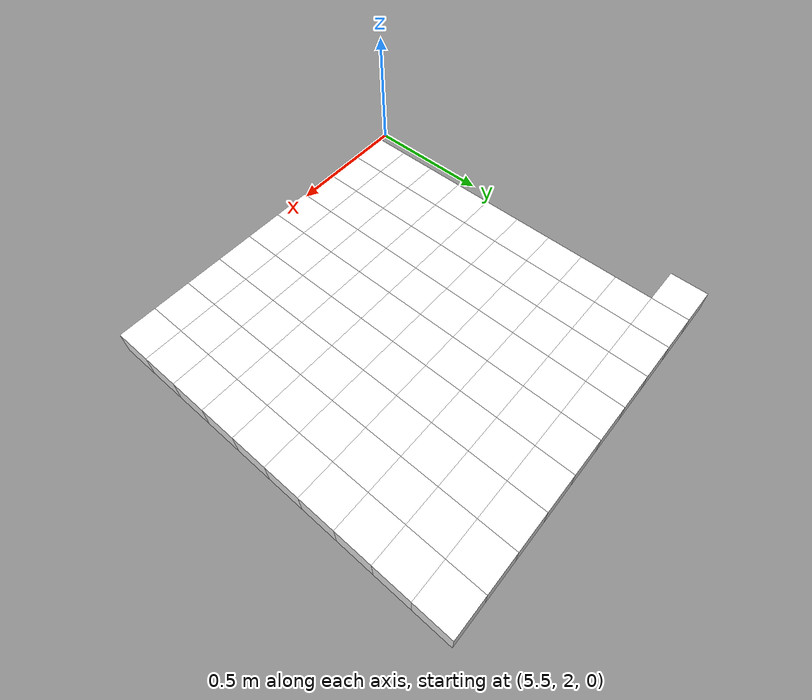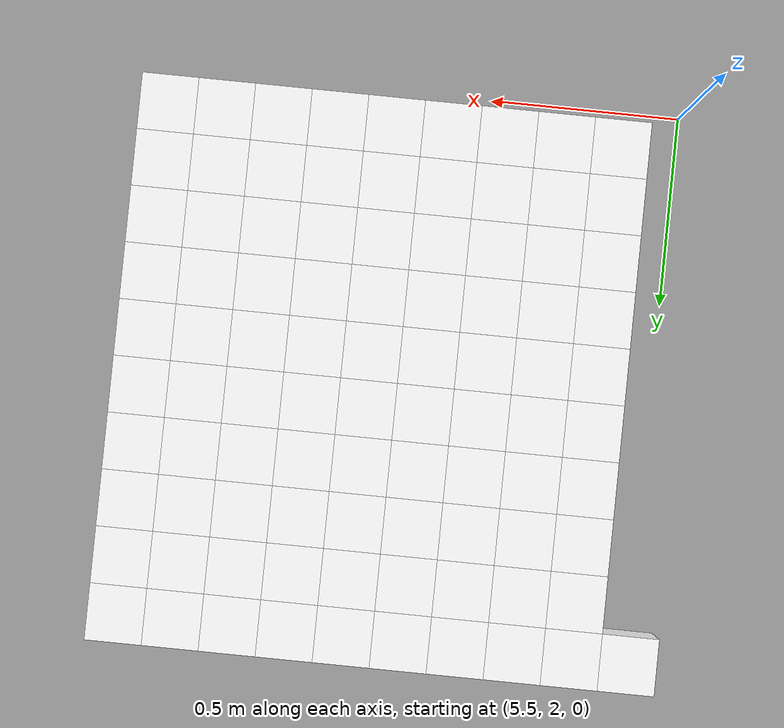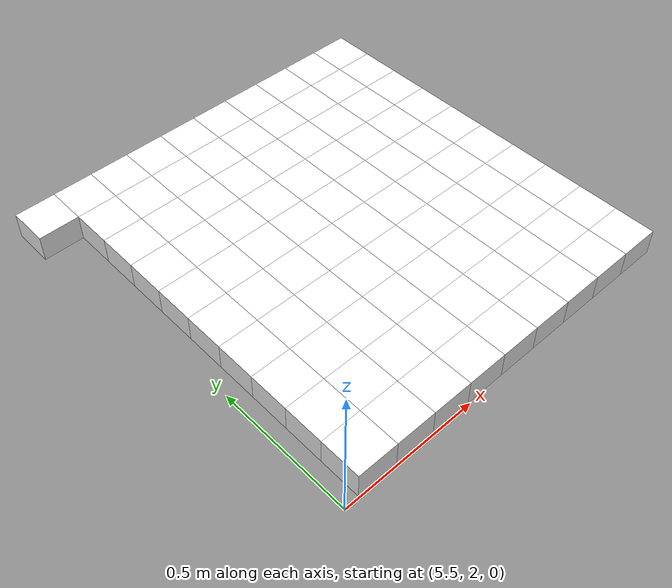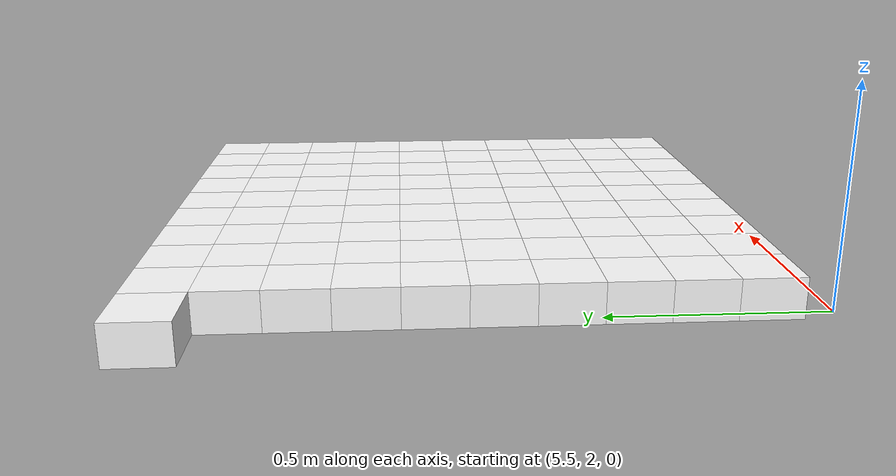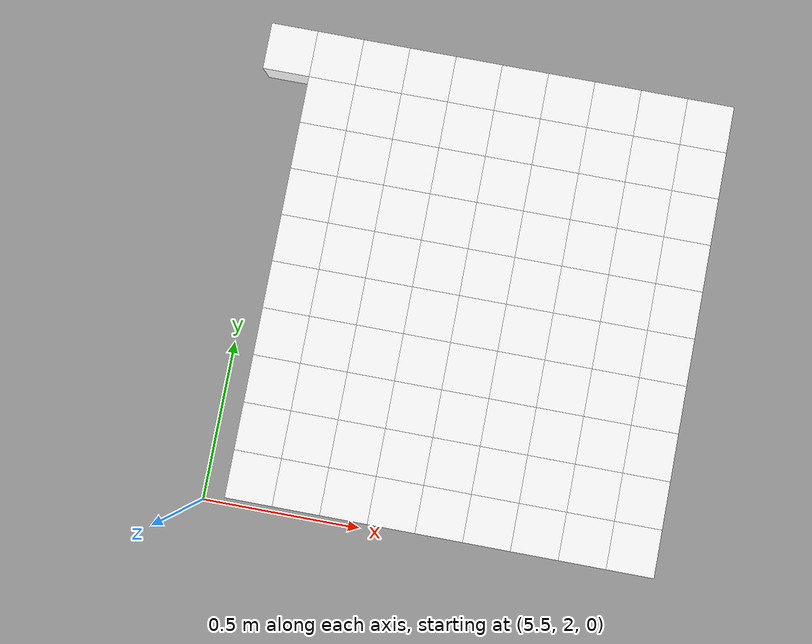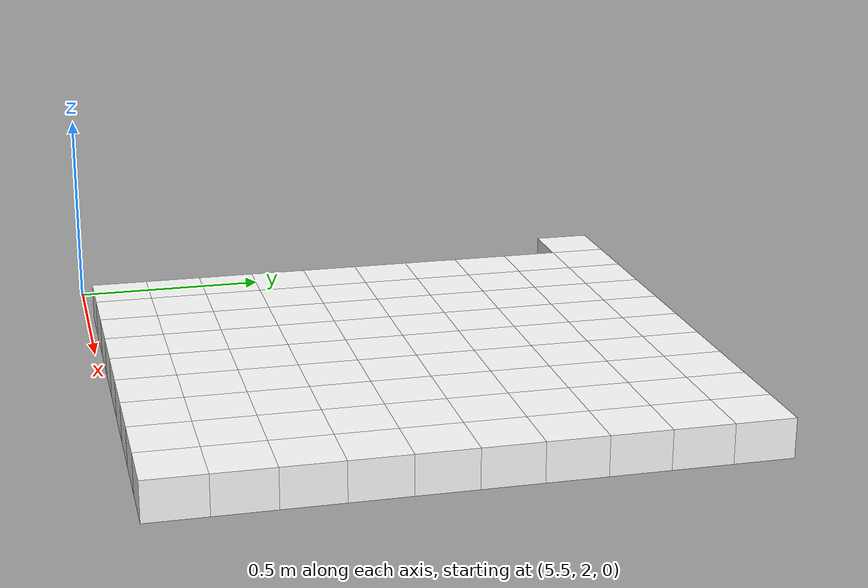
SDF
<sdf version="1.7">
 <world name="default">
  <include><uri>model://sun</uri></include>
  <model name="static_environment">
   <static>true</static>
   <link name="region_1011">
    <pose>5.650000000000004 2.0999999999999996 0.0 0.0 0.0 0.0</pose>
    <collision name="region_1011_collision">
     <geometry><box><size>0.15 0.15 0.1</size></box></geometry>
     <surface><friction><ode><mu>1.0</mu><mu2>1.0</mu2></ode></friction></surface>
    </collision>
    <visual name="region_1011_visual">
     <geometry><box><size>0.15 0.15 0.1</size></box></geometry>
     <material><ambient>1.0 1.0 1.0 1.0</ambient><diffuse>1.0 1.0 1.0 1.0</diffuse></material>
    </visual>
   </link>
   <link name="region_1012">
    <pose>5.800000000000004 2.0999999999999996 0.0 0.0 0.0 0.0</pose>
    <collision name="region_1012_collision">
     <geometry><box><size>0.15 0.15 0.1</size></box></geometry>
     <surface><friction><ode><mu>1.0</mu><mu2>1.0</mu2></ode></friction></surface>
    </collision>
    <visual name="region_1012_visual">
     <geometry><box><size>0.15 0.15 0.1</size></box></geometry>
     <material><ambient>1.0 1.0 1.0 1.0</ambient><diffuse>1.0 1.0 1.0 1.0</diffuse></material>
    </visual>
   </link>
   <link name="region_1013">
    <pose>5.950000000000005 2.0999999999999996 0.0 0.0 0.0 0.0</pose>
    <collision name="region_1013_collision">
     <geometry><box><size>0.15 0.15 0.1</size></box></geometry>
     <surface><friction><ode><mu>1.0</mu><mu2>1.0</mu2></ode></friction></surface>
    </collision>
    <visual name="region_1013_visual">
     <geometry><box><size>0.15 0.15 0.1</size></box></geometry>
     <material><ambient>1.0 1.0 1.0 1.0</ambient><diffuse>1.0 1.0 1.0 1.0</diffuse></material>
    </visual>
   </link>
   <link name="region_1014">
    <pose>6.100000000000005 2.0999999999999996 0.0 0.0 0.0 0.0</pose>
    <collision name="region_1014_collision">
     <geometry><box><size>0.15 0.15 0.1</size></box></geometry>
     <surface><friction><ode><mu>1.0</mu><mu2>1.0</mu2></ode></friction></surface>
    </collision>
    <visual name="region_1014_visual">
     <geometry><box><size>0.15 0.15 0.1</size></box></geometry>
     <material><ambient>1.0 1.0 1.0 1.0</ambient><diffuse>1.0 1.0 1.0 1.0</diffuse></material>
    </visual>
   </link>
   <link name="region_1015">
    <pose>6.250000000000005 2.0999999999999996 0.0 0.0 0.0 0.0</pose>
    <collision name="region_1015_collision">
     <geometry><box><size>0.15 0.15 0.1</size></box></geometry>
     <surface><friction><ode><mu>1.0</mu><mu2>1.0</mu2></ode></friction></surface>
    </collision>
    <visual name="region_1015_visual">
     <geometry><box><size>0.15 0.15 0.1</size></box></geometry>
     <material><ambient>1.0 1.0 1.0 1.0</ambient><diffuse>1.0 1.0 1.0 1.0</diffuse></material>
    </visual>
   </link>
   <link name="region_1016">
    <pose>6.400000000000006 2.0999999999999996 0.0 0.0 0.0 0.0</pose>
    <collision name="region_1016_collision">
     <geometry><box><size>0.15 0.15 0.1</size></box></geometry>
     <surface><friction><ode><mu>1.0</mu><mu2>1.0</mu2></ode></friction></surface>
    </collision>
    <visual name="region_1016_visual">
     <geometry><box><size>0.15 0.15 0.1</size></box></geometry>
     <material><ambient>1.0 1.0 1.0 1.0</ambient><diffuse>1.0 1.0 1.0 1.0</diffuse></material>
    </visual>
   </link>
   <link name="region_1017">
    <pose>6.550000000000006 2.0999999999999996 0.0 0.0 0.0 0.0</pose>
    <collision name="region_1017_collision">
     <geometry><box><size>0.15 0.15 0.1</size></box></geometry>
     <surface><friction><ode><mu>1.0</mu><mu2>1.0</mu2></ode></friction></surface>
    </collision>
    <visual name="region_1017_visual">
     <geometry><box><size>0.15 0.15 0.1</size></box></geometry>
     <material><ambient>1.0 1.0 1.0 1.0</ambient><diffuse>1.0 1.0 1.0 1.0</diffuse></material>
    </visual>
   </link>
   <link name="region_1018">
    <pose>6.700000000000006 2.0999999999999996 0.0 0.0 0.0 0.0</pose>
    <collision name="region_1018_collision">
     <geometry><box><size>0.15 0.15 0.1</size></box></geometry>
     <surface><friction><ode><mu>1.0</mu><mu2>1.0</mu2></ode></friction></surface>
    </collision>
    <visual name="region_1018_visual">
     <geometry><box><size>0.15 0.15 0.1</size></box></geometry>
     <material><ambient>1.0 1.0 1.0 1.0</ambient><diffuse>1.0 1.0 1.0 1.0</diffuse></material>
    </visual>
   </link>
   <link name="region_1019">
    <pose>6.850000000000007 2.0999999999999996 0.0 0.0 0.0 0.0</pose>
    <collision name="region_1019_collision">
     <geometry><box><size>0.15 0.15 0.1</size></box></geometry>
     <surface><friction><ode><mu>1.0</mu><mu2>1.0</mu2></ode></friction></surface>
    </collision>
    <visual name="region_1019_visual">
     <geometry><box><size>0.15 0.15 0.1</size></box></geometry>
     <material><ambient>1.0 1.0 1.0 1.0</ambient><diffuse>1.0 1.0 1.0 1.0</diffuse></material>
    </visual>
   </link>
   <link name="region_1031">
    <pose>5.650000000000004 2.2499999999999996 0.0 0.0 0.0 0.0</pose>
    <collision name="region_1031_collision">
     <geometry><box><size>0.15 0.15 0.1</size></box></geometry>
     <surface><friction><ode><mu>1.0</mu><mu2>1.0</mu2></ode></friction></surface>
    </collision>
    <visual name="region_1031_visual">
     <geometry><box><size>0.15 0.15 0.1</size></box></geometry>
     <material><ambient>1.0 1.0 1.0 1.0</ambient><diffuse>1.0 1.0 1.0 1.0</diffuse></material>
    </visual>
   </link>
   <link name="region_1032">
    <pose>5.800000000000004 2.2499999999999996 0.0 0.0 0.0 0.0</pose>
    <collision name="region_1032_collision">
     <geometry><box><size>0.15 0.15 0.1</size></box></geometry>
     <surface><friction><ode><mu>1.0</mu><mu2>1.0</mu2></ode></friction></surface>
    </collision>
    <visual name="region_1032_visual">
     <geometry><box><size>0.15 0.15 0.1</size></box></geometry>
     <material><ambient>1.0 1.0 1.0 1.0</ambient><diffuse>1.0 1.0 1.0 1.0</diffuse></material>
    </visual>
   </link>
   <link name="region_1033">
    <pose>5.950000000000005 2.2499999999999996 0.0 0.0 0.0 0.0</pose>
    <collision name="region_1033_collision">
     <geometry><box><size>0.15 0.15 0.1</size></box></geometry>
     <surface><friction><ode><mu>1.0</mu><mu2>1.0</mu2></ode></friction></surface>
    </collision>
    <visual name="region_1033_visual">
     <geometry><box><size>0.15 0.15 0.1</size></box></geometry>
     <material><ambient>1.0 1.0 1.0 1.0</ambient><diffuse>1.0 1.0 1.0 1.0</diffuse></material>
    </visual>
   </link>
   <link name="region_1034">
    <pose>6.100000000000005 2.2499999999999996 0.0 0.0 0.0 0.0</pose>
    <collision name="region_1034_collision">
     <geometry><box><size>0.15 0.15 0.1</size></box></geometry>
     <surface><friction><ode><mu>1.0</mu><mu2>1.0</mu2></ode></friction></surface>
    </collision>
    <visual name="region_1034_visual">
     <geometry><box><size>0.15 0.15 0.1</size></box></geometry>
     <material><ambient>1.0 1.0 1.0 1.0</ambient><diffuse>1.0 1.0 1.0 1.0</diffuse></material>
    </visual>
   </link>
   <link name="region_1035">
    <pose>6.250000000000005 2.2499999999999996 0.0 0.0 0.0 0.0</pose>
    <collision name="region_1035_collision">
     <geometry><box><size>0.15 0.15 0.1</size></box></geometry>
     <surface><friction><ode><mu>1.0</mu><mu2>1.0</mu2></ode></friction></surface>
    </collision>
    <visual name="region_1035_visual">
     <geometry><box><size>0.15 0.15 0.1</size></box></geometry>
     <material><ambient>1.0 1.0 1.0 1.0</ambient><diffuse>1.0 1.0 1.0 1.0</diffuse></material>
    </visual>
   </link>
   <link name="region_1036">
    <pose>6.400000000000006 2.2499999999999996 0.0 0.0 0.0 0.0</pose>
    <collision name="region_1036_collision">
     <geometry><box><size>0.15 0.15 0.1</size></box></geometry>
     <surface><friction><ode><mu>1.0</mu><mu2>1.0</mu2></ode></friction></surface>
    </collision>
    <visual name="region_1036_visual">
     <geometry><box><size>0.15 0.15 0.1</size></box></geometry>
     <material><ambient>1.0 1.0 1.0 1.0</ambient><diffuse>1.0 1.0 1.0 1.0</diffuse></material>
    </visual>
   </link>
   <link name="region_1037">
    <pose>6.550000000000006 2.2499999999999996 0.0 0.0 0.0 0.0</pose>
    <collision name="region_1037_collision">
     <geometry><box><size>0.15 0.15 0.1</size></box></geometry>
     <surface><friction><ode><mu>1.0</mu><mu2>1.0</mu2></ode></friction></surface>
    </collision>
    <visual name="region_1037_visual">
     <geometry><box><size>0.15 0.15 0.1</size></box></geometry>
     <material><ambient>1.0 1.0 1.0 1.0</ambient><diffuse>1.0 1.0 1.0 1.0</diffuse></material>
    </visual>
   </link>
   <link name="region_1038">
    <pose>6.700000000000006 2.2499999999999996 0.0 0.0 0.0 0.0</pose>
    <collision name="region_1038_collision">
     <geometry><box><size>0.15 0.15 0.1</size></box></geometry>
     <surface><friction><ode><mu>1.0</mu><mu2>1.0</mu2></ode></friction></surface>
    </collision>
    <visual name="region_1038_visual">
     <geometry><box><size>0.15 0.15 0.1</size></box></geometry>
     <material><ambient>1.0 1.0 1.0 1.0</ambient><diffuse>1.0 1.0 1.0 1.0</diffuse></material>
    </visual>
   </link>
   <link name="region_1039">
    <pose>6.850000000000007 2.2499999999999996 0.0 0.0 0.0 0.0</pose>
    <collision name="region_1039_collision">
     <geometry><box><size>0.15 0.15 0.1</size></box></geometry>
     <surface><friction><ode><mu>1.0</mu><mu2>1.0</mu2></ode></friction></surface>
    </collision>
    <visual name="region_1039_visual">
     <geometry><box><size>0.15 0.15 0.1</size></box></geometry>
     <material><ambient>1.0 1.0 1.0 1.0</ambient><diffuse>1.0 1.0 1.0 1.0</diffuse></material>
    </visual>
   </link>
   <link name="region_1051">
    <pose>5.650000000000004 2.3999999999999995 0.0 0.0 0.0 0.0</pose>
    <collision name="region_1051_collision">
     <geometry><box><size>0.15 0.15 0.1</size></box></geometry>
     <surface><friction><ode><mu>1.0</mu><mu2>1.0</mu2></ode></friction></surface>
    </collision>
    <visual name="region_1051_visual">
     <geometry><box><size>0.15 0.15 0.1</size></box></geometry>
     <material><ambient>1.0 1.0 1.0 1.0</ambient><diffuse>1.0 1.0 1.0 1.0</diffuse></material>
    </visual>
   </link>
   <link name="region_1052">
    <pose>5.800000000000004 2.3999999999999995 0.0 0.0 0.0 0.0</pose>
    <collision name="region_1052_collision">
     <geometry><box><size>0.15 0.15 0.1</size></box></geometry>
     <surface><friction><ode><mu>1.0</mu><mu2>1.0</mu2></ode></friction></surface>
    </collision>
    <visual name="region_1052_visual">
     <geometry><box><size>0.15 0.15 0.1</size></box></geometry>
     <material><ambient>1.0 1.0 1.0 1.0</ambient><diffuse>1.0 1.0 1.0 1.0</diffuse></material>
    </visual>
   </link>
   <link name="region_1053">
    <pose>5.950000000000005 2.3999999999999995 0.0 0.0 0.0 0.0</pose>
    <collision name="region_1053_collision">
     <geometry><box><size>0.15 0.15 0.1</size></box></geometry>
     <surface><friction><ode><mu>1.0</mu><mu2>1.0</mu2></ode></friction></surface>
    </collision>
    <visual name="region_1053_visual">
     <geometry><box><size>0.15 0.15 0.1</size></box></geometry>
     <material><ambient>1.0 1.0 1.0 1.0</ambient><diffuse>1.0 1.0 1.0 1.0</diffuse></material>
    </visual>
   </link>
   <link name="region_1054">
    <pose>6.100000000000005 2.3999999999999995 0.0 0.0 0.0 0.0</pose>
    <collision name="region_1054_collision">
     <geometry><box><size>0.15 0.15 0.1</size></box></geometry>
     <surface><friction><ode><mu>1.0</mu><mu2>1.0</mu2></ode></friction></surface>
    </collision>
    <visual name="region_1054_visual">
     <geometry><box><size>0.15 0.15 0.1</size></box></geometry>
     <material><ambient>1.0 1.0 1.0 1.0</ambient><diffuse>1.0 1.0 1.0 1.0</diffuse></material>
    </visual>
   </link>
   <link name="region_1055">
    <pose>6.250000000000005 2.3999999999999995 0.0 0.0 0.0 0.0</pose>
    <collision name="region_1055_collision">
     <geometry><box><size>0.15 0.15 0.1</size></box></geometry>
     <surface><friction><ode><mu>1.0</mu><mu2>1.0</mu2></ode></friction></surface>
    </collision>
    <visual name="region_1055_visual">
     <geometry><box><size>0.15 0.15 0.1</size></box></geometry>
     <material><ambient>1.0 1.0 1.0 1.0</ambient><diffuse>1.0 1.0 1.0 1.0</diffuse></material>
    </visual>
   </link>
   <link name="region_1056">
    <pose>6.400000000000006 2.3999999999999995 0.0 0.0 0.0 0.0</pose>
    <collision name="region_1056_collision">
     <geometry><box><size>0.15 0.15 0.1</size></box></geometry>
     <surface><friction><ode><mu>1.0</mu><mu2>1.0</mu2></ode></friction></surface>
    </collision>
    <visual name="region_1056_visual">
     <geometry><box><size>0.15 0.15 0.1</size></box></geometry>
     <material><ambient>1.0 1.0 1.0 1.0</ambient><diffuse>1.0 1.0 1.0 1.0</diffuse></material>
    </visual>
   </link>
   <link name="region_1057">
    <pose>6.550000000000006 2.3999999999999995 0.0 0.0 0.0 0.0</pose>
    <collision name="region_1057_collision">
     <geometry><box><size>0.15 0.15 0.1</size></box></geometry>
     <surface><friction><ode><mu>1.0</mu><mu2>1.0</mu2></ode></friction></surface>
    </collision>
    <visual name="region_1057_visual">
     <geometry><box><size>0.15 0.15 0.1</size></box></geometry>
     <material><ambient>1.0 1.0 1.0 1.0</ambient><diffuse>1.0 1.0 1.0 1.0</diffuse></material>
    </visual>
   </link>
   <link name="region_1058">
    <pose>6.700000000000006 2.3999999999999995 0.0 0.0 0.0 0.0</pose>
    <collision name="region_1058_collision">
     <geometry><box><size>0.15 0.15 0.1</size></box></geometry>
     <surface><friction><ode><mu>1.0</mu><mu2>1.0</mu2></ode></friction></surface>
    </collision>
    <visual name="region_1058_visual">
     <geometry><box><size>0.15 0.15 0.1</size></box></geometry>
     <material><ambient>1.0 1.0 1.0 1.0</ambient><diffuse>1.0 1.0 1.0 1.0</diffuse></material>
    </visual>
   </link>
   <link name="region_1059">
    <pose>6.850000000000007 2.3999999999999995 0.0 0.0 0.0 0.0</pose>
    <collision name="region_1059_collision">
     <geometry><box><size>0.15 0.15 0.1</size></box></geometry>
     <surface><friction><ode><mu>1.0</mu><mu2>1.0</mu2></ode></friction></surface>
    </collision>
    <visual name="region_1059_visual">
     <geometry><box><size>0.15 0.15 0.1</size></box></geometry>
     <material><ambient>1.0 1.0 1.0 1.0</ambient><diffuse>1.0 1.0 1.0 1.0</diffuse></material>
    </visual>
   </link>
   <link name="region_1071">
    <pose>5.650000000000004 2.5499999999999994 0.0 0.0 0.0 0.0</pose>
    <collision name="region_1071_collision">
     <geometry><box><size>0.15 0.15 0.1</size></box></geometry>
     <surface><friction><ode><mu>1.0</mu><mu2>1.0</mu2></ode></friction></surface>
    </collision>
    <visual name="region_1071_visual">
     <geometry><box><size>0.15 0.15 0.1</size></box></geometry>
     <material><ambient>1.0 1.0 1.0 1.0</ambient><diffuse>1.0 1.0 1.0 1.0</diffuse></material>
    </visual>
   </link>
   <link name="region_1072">
    <pose>5.800000000000004 2.5499999999999994 0.0 0.0 0.0 0.0</pose>
    <collision name="region_1072_collision">
     <geometry><box><size>0.15 0.15 0.1</size></box></geometry>
     <surface><friction><ode><mu>1.0</mu><mu2>1.0</mu2></ode></friction></surface>
    </collision>
    <visual name="region_1072_visual">
     <geometry><box><size>0.15 0.15 0.1</size></box></geometry>
     <material><ambient>1.0 1.0 1.0 1.0</ambient><diffuse>1.0 1.0 1.0 1.0</diffuse></material>
    </visual>
   </link>
   <link name="region_1073">
    <pose>5.950000000000005 2.5499999999999994 0.0 0.0 0.0 0.0</pose>
    <collision name="region_1073_collision">
     <geometry><box><size>0.15 0.15 0.1</size></box></geometry>
     <surface><friction><ode><mu>1.0</mu><mu2>1.0</mu2></ode></friction></surface>
    </collision>
    <visual name="region_1073_visual">
     <geometry><box><size>0.15 0.15 0.1</size></box></geometry>
     <material><ambient>1.0 1.0 1.0 1.0</ambient><diffuse>1.0 1.0 1.0 1.0</diffuse></material>
    </visual>
   </link>
   <link name="region_1074">
    <pose>6.100000000000005 2.5499999999999994 0.0 0.0 0.0 0.0</pose>
    <collision name="region_1074_collision">
     <geometry><box><size>0.15 0.15 0.1</size></box></geometry>
     <surface><friction><ode><mu>1.0</mu><mu2>1.0</mu2></ode></friction></surface>
    </collision>
    <visual name="region_1074_visual">
     <geometry><box><size>0.15 0.15 0.1</size></box></geometry>
     <material><ambient>1.0 1.0 1.0 1.0</ambient><diffuse>1.0 1.0 1.0 1.0</diffuse></material>
    </visual>
   </link>
   <link name="region_1075">
    <pose>6.250000000000005 2.5499999999999994 0.0 0.0 0.0 0.0</pose>
    <collision name="region_1075_collision">
     <geometry><box><size>0.15 0.15 0.1</size></box></geometry>
     <surface><friction><ode><mu>1.0</mu><mu2>1.0</mu2></ode></friction></surface>
    </collision>
    <visual name="region_1075_visual">
     <geometry><box><size>0.15 0.15 0.1</size></box></geometry>
     <material><ambient>1.0 1.0 1.0 1.0</ambient><diffuse>1.0 1.0 1.0 1.0</diffuse></material>
    </visual>
   </link>
   <link name="region_1076">
    <pose>6.400000000000006 2.5499999999999994 0.0 0.0 0.0 0.0</pose>
    <collision name="region_1076_collision">
     <geometry><box><size>0.15 0.15 0.1</size></box></geometry>
     <surface><friction><ode><mu>1.0</mu><mu2>1.0</mu2></ode></friction></surface>
    </collision>
    <visual name="region_1076_visual">
     <geometry><box><size>0.15 0.15 0.1</size></box></geometry>
     <material><ambient>1.0 1.0 1.0 1.0</ambient><diffuse>1.0 1.0 1.0 1.0</diffuse></material>
    </visual>
   </link>
   <link name="region_1077">
    <pose>6.550000000000006 2.5499999999999994 0.0 0.0 0.0 0.0</pose>
    <collision name="region_1077_collision">
     <geometry><box><size>0.15 0.15 0.1</size></box></geometry>
     <surface><friction><ode><mu>1.0</mu><mu2>1.0</mu2></ode></friction></surface>
    </collision>
    <visual name="region_1077_visual">
     <geometry><box><size>0.15 0.15 0.1</size></box></geometry>
     <material><ambient>1.0 1.0 1.0 1.0</ambient><diffuse>1.0 1.0 1.0 1.0</diffuse></material>
    </visual>
   </link>
   <link name="region_1078">
    <pose>6.700000000000006 2.5499999999999994 0.0 0.0 0.0 0.0</pose>
    <collision name="region_1078_collision">
     <geometry><box><size>0.15 0.15 0.1</size></box></geometry>
     <surface><friction><ode><mu>1.0</mu><mu2>1.0</mu2></ode></friction></surface>
    </collision>
    <visual name="region_1078_visual">
     <geometry><box><size>0.15 0.15 0.1</size></box></geometry>
     <material><ambient>1.0 1.0 1.0 1.0</ambient><diffuse>1.0 1.0 1.0 1.0</diffuse></material>
    </visual>
   </link>
   <link name="region_1079">
    <pose>6.850000000000007 2.5499999999999994 0.0 0.0 0.0 0.0</pose>
    <collision name="region_1079_collision">
     <geometry><box><size>0.15 0.15 0.1</size></box></geometry>
     <surface><friction><ode><mu>1.0</mu><mu2>1.0</mu2></ode></friction></surface>
    </collision>
    <visual name="region_1079_visual">
     <geometry><box><size>0.15 0.15 0.1</size></box></geometry>
     <material><ambient>1.0 1.0 1.0 1.0</ambient><diffuse>1.0 1.0 1.0 1.0</diffuse></material>
    </visual>
   </link>
   <link name="region_1091">
    <pose>5.650000000000004 2.6999999999999997 0.0 0.0 0.0 0.0</pose>
    <collision name="region_1091_collision">
     <geometry><box><size>0.15 0.15 0.1</size></box></geometry>
     <surface><friction><ode><mu>1.0</mu><mu2>1.0</mu2></ode></friction></surface>
    </collision>
    <visual name="region_1091_visual">
     <geometry><box><size>0.15 0.15 0.1</size></box></geometry>
     <material><ambient>1.0 1.0 1.0 1.0</ambient><diffuse>1.0 1.0 1.0 1.0</diffuse></material>
    </visual>
   </link>
   <link name="region_1092">
    <pose>5.800000000000004 2.6999999999999997 0.0 0.0 0.0 0.0</pose>
    <collision name="region_1092_collision">
     <geometry><box><size>0.15 0.15 0.1</size></box></geometry>
     <surface><friction><ode><mu>1.0</mu><mu2>1.0</mu2></ode></friction></surface>
    </collision>
    <visual name="region_1092_visual">
     <geometry><box><size>0.15 0.15 0.1</size></box></geometry>
     <material><ambient>1.0 1.0 1.0 1.0</ambient><diffuse>1.0 1.0 1.0 1.0</diffuse></material>
    </visual>
   </link>
   <link name="region_1093">
    <pose>5.950000000000005 2.6999999999999997 0.0 0.0 0.0 0.0</pose>
    <collision name="region_1093_collision">
     <geometry><box><size>0.15 0.15 0.1</size></box></geometry>
     <surface><friction><ode><mu>1.0</mu><mu2>1.0</mu2></ode></friction></surface>
    </collision>
    <visual name="region_1093_visual">
     <geometry><box><size>0.15 0.15 0.1</size></box></geometry>
     <material><ambient>1.0 1.0 1.0 1.0</ambient><diffuse>1.0 1.0 1.0 1.0</diffuse></material>
    </visual>
   </link>
   <link name="region_1094">
    <pose>6.100000000000005 2.6999999999999997 0.0 0.0 0.0 0.0</pose>
    <collision name="region_1094_collision">
     <geometry><box><size>0.15 0.15 0.1</size></box></geometry>
     <surface><friction><ode><mu>1.0</mu><mu2>1.0</mu2></ode></friction></surface>
    </collision>
    <visual name="region_1094_visual">
     <geometry><box><size>0.15 0.15 0.1</size></box></geometry>
     <material><ambient>1.0 1.0 1.0 1.0</ambient><diffuse>1.0 1.0 1.0 1.0</diffuse></material>
    </visual>
   </link>
   <link name="region_1095">
    <pose>6.250000000000005 2.6999999999999997 0.0 0.0 0.0 0.0</pose>
    <collision name="region_1095_collision">
     <geometry><box><size>0.15 0.15 0.1</size></box></geometry>
     <surface><friction><ode><mu>1.0</mu><mu2>1.0</mu2></ode></friction></surface>
    </collision>
    <visual name="region_1095_visual">
     <geometry><box><size>0.15 0.15 0.1</size></box></geometry>
     <material><ambient>1.0 1.0 1.0 1.0</ambient><diffuse>1.0 1.0 1.0 1.0</diffuse></material>
    </visual>
   </link>
   <link name="region_1096">
    <pose>6.400000000000006 2.6999999999999997 0.0 0.0 0.0 0.0</pose>
    <collision name="region_1096_collision">
     <geometry><box><size>0.15 0.15 0.1</size></box></geometry>
     <surface><friction><ode><mu>1.0</mu><mu2>1.0</mu2></ode></friction></surface>
    </collision>
    <visual name="region_1096_visual">
     <geometry><box><size>0.15 0.15 0.1</size></box></geometry>
     <material><ambient>1.0 1.0 1.0 1.0</ambient><diffuse>1.0 1.0 1.0 1.0</diffuse></material>
    </visual>
   </link>
   <link name="region_1097">
    <pose>6.550000000000006 2.6999999999999997 0.0 0.0 0.0 0.0</pose>
    <collision name="region_1097_collision">
     <geometry><box><size>0.15 0.15 0.1</size></box></geometry>
     <surface><friction><ode><mu>1.0</mu><mu2>1.0</mu2></ode></friction></surface>
    </collision>
    <visual name="region_1097_visual">
     <geometry><box><size>0.15 0.15 0.1</size></box></geometry>
     <material><ambient>1.0 1.0 1.0 1.0</ambient><diffuse>1.0 1.0 1.0 1.0</diffuse></material>
    </visual>
   </link>
   <link name="region_1098">
    <pose>6.700000000000006 2.6999999999999997 0.0 0.0 0.0 0.0</pose>
    <collision name="region_1098_collision">
     <geometry><box><size>0.15 0.15 0.1</size></box></geometry>
     <surface><friction><ode><mu>1.0</mu><mu2>1.0</mu2></ode></friction></surface>
    </collision>
    <visual name="region_1098_visual">
     <geometry><box><size>0.15 0.15 0.1</size></box></geometry>
     <material><ambient>1.0 1.0 1.0 1.0</ambient><diffuse>1.0 1.0 1.0 1.0</diffuse></material>
    </visual>
   </link>
   <link name="region_1099">
    <pose>6.850000000000007 2.6999999999999997 0.0 0.0 0.0 0.0</pose>
    <collision name="region_1099_collision">
     <geometry><box><size>0.15 0.15 0.1</size></box></geometry>
     <surface><friction><ode><mu>1.0</mu><mu2>1.0</mu2></ode></friction></surface>
    </collision>
    <visual name="region_1099_visual">
     <geometry><box><size>0.15 0.15 0.1</size></box></geometry>
     <material><ambient>1.0 1.0 1.0 1.0</ambient><diffuse>1.0 1.0 1.0 1.0</diffuse></material>
    </visual>
   </link>
   <link name="region_1111">
    <pose>5.650000000000004 2.8499999999999996 0.0 0.0 0.0 0.0</pose>
    <collision name="region_1111_collision">
     <geometry><box><size>0.15 0.15 0.1</size></box></geometry>
     <surface><friction><ode><mu>1.0</mu><mu2>1.0</mu2></ode></friction></surface>
    </collision>
    <visual name="region_1111_visual">
     <geometry><box><size>0.15 0.15 0.1</size></box></geometry>
     <material><ambient>1.0 1.0 1.0 1.0</ambient><diffuse>1.0 1.0 1.0 1.0</diffuse></material>
    </visual>
   </link>
   <link name="region_1112">
    <pose>5.800000000000004 2.8499999999999996 0.0 0.0 0.0 0.0</pose>
    <collision name="region_1112_collision">
     <geometry><box><size>0.15 0.15 0.1</size></box></geometry>
     <surface><friction><ode><mu>1.0</mu><mu2>1.0</mu2></ode></friction></surface>
    </collision>
    <visual name="region_1112_visual">
     <geometry><box><size>0.15 0.15 0.1</size></box></geometry>
     <material><ambient>1.0 1.0 1.0 1.0</ambient><diffuse>1.0 1.0 1.0 1.0</diffuse></material>
    </visual>
   </link>
   <link name="region_1113">
    <pose>5.950000000000005 2.8499999999999996 0.0 0.0 0.0 0.0</pose>
    <collision name="region_1113_collision">
     <geometry><box><size>0.15 0.15 0.1</size></box></geometry>
     <surface><friction><ode><mu>1.0</mu><mu2>1.0</mu2></ode></friction></surface>
    </collision>
    <visual name="region_1113_visual">
     <geometry><box><size>0.15 0.15 0.1</size></box></geometry>
     <material><ambient>1.0 1.0 1.0 1.0</ambient><diffuse>1.0 1.0 1.0 1.0</diffuse></material>
    </visual>
   </link>
   <link name="region_1114">
    <pose>6.100000000000005 2.8499999999999996 0.0 0.0 0.0 0.0</pose>
    <collision name="region_1114_collision">
     <geometry><box><size>0.15 0.15 0.1</size></box></geometry>
     <surface><friction><ode><mu>1.0</mu><mu2>1.0</mu2></ode></friction></surface>
    </collision>
    <visual name="region_1114_visual">
     <geometry><box><size>0.15 0.15 0.1</size></box></geometry>
     <material><ambient>1.0 1.0 1.0 1.0</ambient><diffuse>1.0 1.0 1.0 1.0</diffuse></material>
    </visual>
   </link>
   <link name="region_1115">
    <pose>6.250000000000005 2.8499999999999996 0.0 0.0 0.0 0.0</pose>
    <collision name="region_1115_collision">
     <geometry><box><size>0.15 0.15 0.1</size></box></geometry>
     <surface><friction><ode><mu>1.0</mu><mu2>1.0</mu2></ode></friction></surface>
    </collision>
    <visual name="region_1115_visual">
     <geometry><box><size>0.15 0.15 0.1</size></box></geometry>
     <material><ambient>1.0 1.0 1.0 1.0</ambient><diffuse>1.0 1.0 1.0 1.0</diffuse></material>
    </visual>
   </link>
   <link name="region_1116">
    <pose>6.400000000000006 2.8499999999999996 0.0 0.0 0.0 0.0</pose>
    <collision name="region_1116_collision">
     <geometry><box><size>0.15 0.15 0.1</size></box></geometry>
     <surface><friction><ode><mu>1.0</mu><mu2>1.0</mu2></ode></friction></surface>
    </collision>
    <visual name="region_1116_visual">
     <geometry><box><size>0.15 0.15 0.1</size></box></geometry>
     <material><ambient>1.0 1.0 1.0 1.0</ambient><diffuse>1.0 1.0 1.0 1.0</diffuse></material>
    </visual>
   </link>
   <link name="region_1117">
    <pose>6.550000000000006 2.8499999999999996 0.0 0.0 0.0 0.0</pose>
    <collision name="region_1117_collision">
     <geometry><box><size>0.15 0.15 0.1</size></box></geometry>
     <surface><friction><ode><mu>1.0</mu><mu2>1.0</mu2></ode></friction></surface>
    </collision>
    <visual name="region_1117_visual">
     <geometry><box><size>0.15 0.15 0.1</size></box></geometry>
     <material><ambient>1.0 1.0 1.0 1.0</ambient><diffuse>1.0 1.0 1.0 1.0</diffuse></material>
    </visual>
   </link>
   <link name="region_1118">
    <pose>6.700000000000006 2.8499999999999996 0.0 0.0 0.0 0.0</pose>
    <collision name="region_1118_collision">
     <geometry><box><size>0.15 0.15 0.1</size></box></geometry>
     <surface><friction><ode><mu>1.0</mu><mu2>1.0</mu2></ode></friction></surface>
    </collision>
    <visual name="region_1118_visual">
     <geometry><box><size>0.15 0.15 0.1</size></box></geometry>
     <material><ambient>1.0 1.0 1.0 1.0</ambient><diffuse>1.0 1.0 1.0 1.0</diffuse></material>
    </visual>
   </link>
   <link name="region_1119">
    <pose>6.850000000000007 2.8499999999999996 0.0 0.0 0.0 0.0</pose>
    <collision name="region_1119_collision">
     <geometry><box><size>0.15 0.15 0.1</size></box></geometry>
     <surface><friction><ode><mu>1.0</mu><mu2>1.0</mu2></ode></friction></surface>
    </collision>
    <visual name="region_1119_visual">
     <geometry><box><size>0.15 0.15 0.1</size></box></geometry>
     <material><ambient>1.0 1.0 1.0 1.0</ambient><diffuse>1.0 1.0 1.0 1.0</diffuse></material>
    </visual>
   </link>
   <link name="region_1131">
    <pose>5.650000000000004 2.9999999999999996 0.0 0.0 0.0 0.0</pose>
    <collision name="region_1131_collision">
     <geometry><box><size>0.15 0.15 0.1</size></box></geometry>
     <surface><friction><ode><mu>1.0</mu><mu2>1.0</mu2></ode></friction></surface>
    </collision>
    <visual name="region_1131_visual">
     <geometry><box><size>0.15 0.15 0.1</size></box></geometry>
     <material><ambient>1.0 1.0 1.0 1.0</ambient><diffuse>1.0 1.0 1.0 1.0</diffuse></material>
    </visual>
   </link>
   <link name="region_1132">
    <pose>5.800000000000004 2.9999999999999996 0.0 0.0 0.0 0.0</pose>
    <collision name="region_1132_collision">
     <geometry><box><size>0.15 0.15 0.1</size></box></geometry>
     <surface><friction><ode><mu>1.0</mu><mu2>1.0</mu2></ode></friction></surface>
    </collision>
    <visual name="region_1132_visual">
     <geometry><box><size>0.15 0.15 0.1</size></box></geometry>
     <material><ambient>1.0 1.0 1.0 1.0</ambient><diffuse>1.0 1.0 1.0 1.0</diffuse></material>
    </visual>
   </link>
   <link name="region_1133">
    <pose>5.950000000000005 2.9999999999999996 0.0 0.0 0.0 0.0</pose>
    <collision name="region_1133_collision">
     <geometry><box><size>0.15 0.15 0.1</size></box></geometry>
     <surface><friction><ode><mu>1.0</mu><mu2>1.0</mu2></ode></friction></surface>
    </collision>
    <visual name="region_1133_visual">
     <geometry><box><size>0.15 0.15 0.1</size></box></geometry>
     <material><ambient>1.0 1.0 1.0 1.0</ambient><diffuse>1.0 1.0 1.0 1.0</diffuse></material>
    </visual>
   </link>
   <link name="region_1134">
    <pose>6.100000000000005 2.9999999999999996 0.0 0.0 0.0 0.0</pose>
    <collision name="region_1134_collision">
     <geometry><box><size>0.15 0.15 0.1</size></box></geometry>
     <surface><friction><ode><mu>1.0</mu><mu2>1.0</mu2></ode></friction></surface>
    </collision>
    <visual name="region_1134_visual">
     <geometry><box><size>0.15 0.15 0.1</size></box></geometry>
     <material><ambient>1.0 1.0 1.0 1.0</ambient><diffuse>1.0 1.0 1.0 1.0</diffuse></material>
    </visual>
   </link>
   <link name="region_1135">
    <pose>6.250000000000005 2.9999999999999996 0.0 0.0 0.0 0.0</pose>
    <collision name="region_1135_collision">
     <geometry><box><size>0.15 0.15 0.1</size></box></geometry>
     <surface><friction><ode><mu>1.0</mu><mu2>1.0</mu2></ode></friction></surface>
    </collision>
    <visual name="region_1135_visual">
     <geometry><box><size>0.15 0.15 0.1</size></box></geometry>
     <material><ambient>1.0 1.0 1.0 1.0</ambient><diffuse>1.0 1.0 1.0 1.0</diffuse></material>
    </visual>
   </link>
   <link name="region_1136">
    <pose>6.400000000000006 2.9999999999999996 0.0 0.0 0.0 0.0</pose>
    <collision name="region_1136_collision">
     <geometry><box><size>0.15 0.15 0.1</size></box></geometry>
     <surface><friction><ode><mu>1.0</mu><mu2>1.0</mu2></ode></friction></surface>
    </collision>
    <visual name="region_1136_visual">
     <geometry><box><size>0.15 0.15 0.1</size></box></geometry>
     <material><ambient>1.0 1.0 1.0 1.0</ambient><diffuse>1.0 1.0 1.0 1.0</diffuse></material>
    </visual>
   </link>
   <link name="region_1137">
    <pose>6.550000000000006 2.9999999999999996 0.0 0.0 0.0 0.0</pose>
    <collision name="region_1137_collision">
     <geometry><box><size>0.15 0.15 0.1</size></box></geometry>
     <surface><friction><ode><mu>1.0</mu><mu2>1.0</mu2></ode></friction></surface>
    </collision>
    <visual name="region_1137_visual">
     <geometry><box><size>0.15 0.15 0.1</size></box></geometry>
     <material><ambient>1.0 1.0 1.0 1.0</ambient><diffuse>1.0 1.0 1.0 1.0</diffuse></material>
    </visual>
   </link>
   <link name="region_1138">
    <pose>6.700000000000006 2.9999999999999996 0.0 0.0 0.0 0.0</pose>
    <collision name="region_1138_collision">
     <geometry><box><size>0.15 0.15 0.1</size></box></geometry>
     <surface><friction><ode><mu>1.0</mu><mu2>1.0</mu2></ode></friction></surface>
    </collision>
    <visual name="region_1138_visual">
     <geometry><box><size>0.15 0.15 0.1</size></box></geometry>
     <material><ambient>1.0 1.0 1.0 1.0</ambient><diffuse>1.0 1.0 1.0 1.0</diffuse></material>
    </visual>
   </link>
   <link name="region_1139">
    <pose>6.850000000000007 2.9999999999999996 0.0 0.0 0.0 0.0</pose>
    <collision name="region_1139_collision">
     <geometry><box><size>0.15 0.15 0.1</size></box></geometry>
     <surface><friction><ode><mu>1.0</mu><mu2>1.0</mu2></ode></friction></surface>
    </collision>
    <visual name="region_1139_visual">
     <geometry><box><size>0.15 0.15 0.1</size></box></geometry>
     <material><ambient>1.0 1.0 1.0 1.0</ambient><diffuse>1.0 1.0 1.0 1.0</diffuse></material>
    </visual>
   </link>
   <link name="region_1151">
    <pose>5.650000000000004 3.1499999999999995 0.0 0.0 0.0 0.0</pose>
    <collision name="region_1151_collision">
     <geometry><box><size>0.15 0.15 0.1</size></box></geometry>
     <surface><friction><ode><mu>1.0</mu><mu2>1.0</mu2></ode></friction></surface>
    </collision>
    <visual name="region_1151_visual">
     <geometry><box><size>0.15 0.15 0.1</size></box></geometry>
     <material><ambient>1.0 1.0 1.0 1.0</ambient><diffuse>1.0 1.0 1.0 1.0</diffuse></material>
    </visual>
   </link>
   <link name="region_1152">
    <pose>5.800000000000004 3.1499999999999995 0.0 0.0 0.0 0.0</pose>
    <collision name="region_1152_collision">
     <geometry><box><size>0.15 0.15 0.1</size></box></geometry>
     <surface><friction><ode><mu>1.0</mu><mu2>1.0</mu2></ode></friction></surface>
    </collision>
    <visual name="region_1152_visual">
     <geometry><box><size>0.15 0.15 0.1</size></box></geometry>
     <material><ambient>1.0 1.0 1.0 1.0</ambient><diffuse>1.0 1.0 1.0 1.0</diffuse></material>
    </visual>
   </link>
   <link name="region_1153">
    <pose>5.950000000000005 3.1499999999999995 0.0 0.0 0.0 0.0</pose>
    <collision name="region_1153_collision">
     <geometry><box><size>0.15 0.15 0.1</size></box></geometry>
     <surface><friction><ode><mu>1.0</mu><mu2>1.0</mu2></ode></friction></surface>
    </collision>
    <visual name="region_1153_visual">
     <geometry><box><size>0.15 0.15 0.1</size></box></geometry>
     <material><ambient>1.0 1.0 1.0 1.0</ambient><diffuse>1.0 1.0 1.0 1.0</diffuse></material>
    </visual>
   </link>
   <link name="region_1154">
    <pose>6.100000000000005 3.1499999999999995 0.0 0.0 0.0 0.0</pose>
    <collision name="region_1154_collision">
     <geometry><box><size>0.15 0.15 0.1</size></box></geometry>
     <surface><friction><ode><mu>1.0</mu><mu2>1.0</mu2></ode></friction></surface>
    </collision>
    <visual name="region_1154_visual">
     <geometry><box><size>0.15 0.15 0.1</size></box></geometry>
     <material><ambient>1.0 1.0 1.0 1.0</ambient><diffuse>1.0 1.0 1.0 1.0</diffuse></material>
    </visual>
   </link>
   <link name="region_1155">
    <pose>6.250000000000005 3.1499999999999995 0.0 0.0 0.0 0.0</pose>
    <collision name="region_1155_collision">
     <geometry><box><size>0.15 0.15 0.1</size></box></geometry>
     <surface><friction><ode><mu>1.0</mu><mu2>1.0</mu2></ode></friction></surface>
    </collision>
    <visual name="region_1155_visual">
     <geometry><box><size>0.15 0.15 0.1</size></box></geometry>
     <material><ambient>1.0 1.0 1.0 1.0</ambient><diffuse>1.0 1.0 1.0 1.0</diffuse></material>
    </visual>
   </link>
   <link name="region_1156">
    <pose>6.400000000000006 3.1499999999999995 0.0 0.0 0.0 0.0</pose>
    <collision name="region_1156_collision">
     <geometry><box><size>0.15 0.15 0.1</size></box></geometry>
     <surface><friction><ode><mu>1.0</mu><mu2>1.0</mu2></ode></friction></surface>
    </collision>
    <visual name="region_1156_visual">
     <geometry><box><size>0.15 0.15 0.1</size></box></geometry>
     <material><ambient>1.0 1.0 1.0 1.0</ambient><diffuse>1.0 1.0 1.0 1.0</diffuse></material>
    </visual>
   </link>
   <link name="region_1157">
    <pose>6.550000000000006 3.1499999999999995 0.0 0.0 0.0 0.0</pose>
    <collision name="region_1157_collision">
     <geometry><box><size>0.15 0.15 0.1</size></box></geometry>
     <surface><friction><ode><mu>1.0</mu><mu2>1.0</mu2></ode></friction></surface>
    </collision>
    <visual name="region_1157_visual">
     <geometry><box><size>0.15 0.15 0.1</size></box></geometry>
     <material><ambient>1.0 1.0 1.0 1.0</ambient><diffuse>1.0 1.0 1.0 1.0</diffuse></material>
    </visual>
   </link>
   <link name="region_1158">
    <pose>6.700000000000006 3.1499999999999995 0.0 0.0 0.0 0.0</pose>
    <collision name="region_1158_collision">
     <geometry><box><size>0.15 0.15 0.1</size></box></geometry>
     <surface><friction><ode><mu>1.0</mu><mu2>1.0</mu2></ode></friction></surface>
    </collision>
    <visual name="region_1158_visual">
     <geometry><box><size>0.15 0.15 0.1</size></box></geometry>
     <material><ambient>1.0 1.0 1.0 1.0</ambient><diffuse>1.0 1.0 1.0 1.0</diffuse></material>
    </visual>
   </link>
   <link name="region_1159">
    <pose>6.850000000000007 3.1499999999999995 0.0 0.0 0.0 0.0</pose>
    <collision name="region_1159_collision">
     <geometry><box><size>0.15 0.15 0.1</size></box></geometry>
     <surface><friction><ode><mu>1.0</mu><mu2>1.0</mu2></ode></friction></surface>
    </collision>
    <visual name="region_1159_visual">
     <geometry><box><size>0.15 0.15 0.1</size></box></geometry>
     <material><ambient>1.0 1.0 1.0 1.0</ambient><diffuse>1.0 1.0 1.0 1.0</diffuse></material>
    </visual>
   </link>
   <link name="region_1171">
    <pose>5.650000000000004 3.2999999999999994 0.0 0.0 0.0 0.0</pose>
    <collision name="region_1171_collision">
     <geometry><box><size>0.15 0.15 0.1</size></box></geometry>
     <surface><friction><ode><mu>1.0</mu><mu2>1.0</mu2></ode></friction></surface>
    </collision>
    <visual name="region_1171_visual">
     <geometry><box><size>0.15 0.15 0.1</size></box></geometry>
     <material><ambient>1.0 1.0 1.0 1.0</ambient><diffuse>1.0 1.0 1.0 1.0</diffuse></material>
    </visual>
   </link>
   <link name="region_1172">
    <pose>5.800000000000004 3.2999999999999994 0.0 0.0 0.0 0.0</pose>
    <collision name="region_1172_collision">
     <geometry><box><size>0.15 0.15 0.1</size></box></geometry>
     <surface><friction><ode><mu>1.0</mu><mu2>1.0</mu2></ode></friction></surface>
    </collision>
    <visual name="region_1172_visual">
     <geometry><box><size>0.15 0.15 0.1</size></box></geometry>
     <material><ambient>1.0 1.0 1.0 1.0</ambient><diffuse>1.0 1.0 1.0 1.0</diffuse></material>
    </visual>
   </link>
   <link name="region_1173">
    <pose>5.950000000000005 3.2999999999999994 0.0 0.0 0.0 0.0</pose>
    <collision name="region_1173_collision">
     <geometry><box><size>0.15 0.15 0.1</size></box></geometry>
     <surface><friction><ode><mu>1.0</mu><mu2>1.0</mu2></ode></friction></surface>
    </collision>
    <visual name="region_1173_visual">
     <geometry><box><size>0.15 0.15 0.1</size></box></geometry>
     <material><ambient>1.0 1.0 1.0 1.0</ambient><diffuse>1.0 1.0 1.0 1.0</diffuse></material>
    </visual>
   </link>
   <link name="region_1174">
    <pose>6.100000000000005 3.2999999999999994 0.0 0.0 0.0 0.0</pose>
    <collision name="region_1174_collision">
     <geometry><box><size>0.15 0.15 0.1</size></box></geometry>
     <surface><friction><ode><mu>1.0</mu><mu2>1.0</mu2></ode></friction></surface>
    </collision>
    <visual name="region_1174_visual">
     <geometry><box><size>0.15 0.15 0.1</size></box></geometry>
     <material><ambient>1.0 1.0 1.0 1.0</ambient><diffuse>1.0 1.0 1.0 1.0</diffuse></material>
    </visual>
   </link>
   <link name="region_1175">
    <pose>6.250000000000005 3.2999999999999994 0.0 0.0 0.0 0.0</pose>
    <collision name="region_1175_collision">
     <geometry><box><size>0.15 0.15 0.1</size></box></geometry>
     <surface><friction><ode><mu>1.0</mu><mu2>1.0</mu2></ode></friction></surface>
    </collision>
    <visual name="region_1175_visual">
     <geometry><box><size>0.15 0.15 0.1</size></box></geometry>
     <material><ambient>1.0 1.0 1.0 1.0</ambient><diffuse>1.0 1.0 1.0 1.0</diffuse></material>
    </visual>
   </link>
   <link name="region_1176">
    <pose>6.400000000000006 3.2999999999999994 0.0 0.0 0.0 0.0</pose>
    <collision name="region_1176_collision">
     <geometry><box><size>0.15 0.15 0.1</size></box></geometry>
     <surface><friction><ode><mu>1.0</mu><mu2>1.0</mu2></ode></friction></surface>
    </collision>
    <visual name="region_1176_visual">
     <geometry><box><size>0.15 0.15 0.1</size></box></geometry>
     <material><ambient>1.0 1.0 1.0 1.0</ambient><diffuse>1.0 1.0 1.0 1.0</diffuse></material>
    </visual>
   </link>
   <link name="region_1177">
    <pose>6.550000000000006 3.2999999999999994 0.0 0.0 0.0 0.0</pose>
    <collision name="region_1177_collision">
     <geometry><box><size>0.15 0.15 0.1</size></box></geometry>
     <surface><friction><ode><mu>1.0</mu><mu2>1.0</mu2></ode></friction></surface>
    </collision>
    <visual name="region_1177_visual">
     <geometry><box><size>0.15 0.15 0.1</size></box></geometry>
     <material><ambient>1.0 1.0 1.0 1.0</ambient><diffuse>1.0 1.0 1.0 1.0</diffuse></material>
    </visual>
   </link>
   <link name="region_1178">
    <pose>6.700000000000006 3.2999999999999994 0.0 0.0 0.0 0.0</pose>
    <collision name="region_1178_collision">
     <geometry><box><size>0.15 0.15 0.1</size></box></geometry>
     <surface><friction><ode><mu>1.0</mu><mu2>1.0</mu2></ode></friction></surface>
    </collision>
    <visual name="region_1178_visual">
     <geometry><box><size>0.15 0.15 0.1</size></box></geometry>
     <material><ambient>1.0 1.0 1.0 1.0</ambient><diffuse>1.0 1.0 1.0 1.0</diffuse></material>
    </visual>
   </link>
   <link name="region_1179">
    <pose>6.850000000000007 3.2999999999999994 0.0 0.0 0.0 0.0</pose>
    <collision name="region_1179_collision">
     <geometry><box><size>0.15 0.15 0.1</size></box></geometry>
     <surface><friction><ode><mu>1.0</mu><mu2>1.0</mu2></ode></friction></surface>
    </collision>
    <visual name="region_1179_visual">
     <geometry><box><size>0.15 0.15 0.1</size></box></geometry>
     <material><ambient>1.0 1.0 1.0 1.0</ambient><diffuse>1.0 1.0 1.0 1.0</diffuse></material>
    </visual>
   </link>
   <link name="region_1190">
    <pose>5.5000000000000036 3.4499999999999993 0.0 0.0 0.0 0.0</pose>
    <collision name="region_1190_collision">
     <geometry><box><size>0.15 0.15 0.1</size></box></geometry>
     <surface><friction><ode><mu>1.0</mu><mu2>1.0</mu2></ode></friction></surface>
    </collision>
    <visual name="region_1190_visual">
     <geometry><box><size>0.15 0.15 0.1</size></box></geometry>
     <material><ambient>1.0 1.0 1.0 1.0</ambient><diffuse>1.0 1.0 1.0 1.0</diffuse></material>
    </visual>
   </link>
   <link name="region_1191">
    <pose>5.650000000000004 3.4499999999999993 0.0 0.0 0.0 0.0</pose>
    <collision name="region_1191_collision">
     <geometry><box><size>0.15 0.15 0.1</size></box></geometry>
     <surface><friction><ode><mu>1.0</mu><mu2>1.0</mu2></ode></friction></surface>
    </collision>
    <visual name="region_1191_visual">
     <geometry><box><size>0.15 0.15 0.1</size></box></geometry>
     <material><ambient>1.0 1.0 1.0 1.0</ambient><diffuse>1.0 1.0 1.0 1.0</diffuse></material>
    </visual>
   </link>
   <link name="region_1192">
    <pose>5.800000000000004 3.4499999999999993 0.0 0.0 0.0 0.0</pose>
    <collision name="region_1192_collision">
     <geometry><box><size>0.15 0.15 0.1</size></box></geometry>
     <surface><friction><ode><mu>1.0</mu><mu2>1.0</mu2></ode></friction></surface>
    </collision>
    <visual name="region_1192_visual">
     <geometry><box><size>0.15 0.15 0.1</size></box></geometry>
     <material><ambient>1.0 1.0 1.0 1.0</ambient><diffuse>1.0 1.0 1.0 1.0</diffuse></material>
    </visual>
   </link>
   <link name="region_1193">
    <pose>5.950000000000005 3.4499999999999993 0.0 0.0 0.0 0.0</pose>
    <collision name="region_1193_collision">
     <geometry><box><size>0.15 0.15 0.1</size></box></geometry>
     <surface><friction><ode><mu>1.0</mu><mu2>1.0</mu2></ode></friction></surface>
    </collision>
    <visual name="region_1193_visual">
     <geometry><box><size>0.15 0.15 0.1</size></box></geometry>
     <material><ambient>1.0 1.0 1.0 1.0</ambient><diffuse>1.0 1.0 1.0 1.0</diffuse></material>
    </visual>
   </link>
   <link name="region_1194">
    <pose>6.100000000000005 3.4499999999999993 0.0 0.0 0.0 0.0</pose>
    <collision name="region_1194_collision">
     <geometry><box><size>0.15 0.15 0.1</size></box></geometry>
     <surface><friction><ode><mu>1.0</mu><mu2>1.0</mu2></ode></friction></surface>
    </collision>
    <visual name="region_1194_visual">
     <geometry><box><size>0.15 0.15 0.1</size></box></geometry>
     <material><ambient>1.0 1.0 1.0 1.0</ambient><diffuse>1.0 1.0 1.0 1.0</diffuse></material>
    </visual>
   </link>
   <link name="region_1195">
    <pose>6.250000000000005 3.4499999999999993 0.0 0.0 0.0 0.0</pose>
    <collision name="region_1195_collision">
     <geometry><box><size>0.15 0.15 0.1</size></box></geometry>
     <surface><friction><ode><mu>1.0</mu><mu2>1.0</mu2></ode></friction></surface>
    </collision>
    <visual name="region_1195_visual">
     <geometry><box><size>0.15 0.15 0.1</size></box></geometry>
     <material><ambient>1.0 1.0 1.0 1.0</ambient><diffuse>1.0 1.0 1.0 1.0</diffuse></material>
    </visual>
   </link>
   <link name="region_1196">
    <pose>6.400000000000006 3.4499999999999993 0.0 0.0 0.0 0.0</pose>
    <collision name="region_1196_collision">
     <geometry><box><size>0.15 0.15 0.1</size></box></geometry>
     <surface><friction><ode><mu>1.0</mu><mu2>1.0</mu2></ode></friction></surface>
    </collision>
    <visual name="region_1196_visual">
     <geometry><box><size>0.15 0.15 0.1</size></box></geometry>
     <material><ambient>1.0 1.0 1.0 1.0</ambient><diffuse>1.0 1.0 1.0 1.0</diffuse></material>
    </visual>
   </link>
   <link name="region_1197">
    <pose>6.550000000000006 3.4499999999999993 0.0 0.0 0.0 0.0</pose>
    <collision name="region_1197_collision">
     <geometry><box><size>0.15 0.15 0.1</size></box></geometry>
     <surface><friction><ode><mu>1.0</mu><mu2>1.0</mu2></ode></friction></surface>
    </collision>
    <visual name="region_1197_visual">
     <geometry><box><size>0.15 0.15 0.1</size></box></geometry>
     <material><ambient>1.0 1.0 1.0 1.0</ambient><diffuse>1.0 1.0 1.0 1.0</diffuse></material>
    </visual>
   </link>
   <link name="region_1198">
    <pose>6.700000000000006 3.4499999999999993 0.0 0.0 0.0 0.0</pose>
    <collision name="region_1198_collision">
     <geometry><box><size>0.15 0.15 0.1</size></box></geometry>
     <surface><friction><ode><mu>1.0</mu><mu2>1.0</mu2></ode></friction></surface>
    </collision>
    <visual name="region_1198_visual">
     <geometry><box><size>0.15 0.15 0.1</size></box></geometry>
     <material><ambient>1.0 1.0 1.0 1.0</ambient><diffuse>1.0 1.0 1.0 1.0</diffuse></material>
    </visual>
   </link>
   <link name="region_1199">
    <pose>6.850000000000007 3.4499999999999993 0.0 0.0 0.0 0.0</pose>
    <collision name="region_1199_collision">
     <geometry><box><size>0.15 0.15 0.1</size></box></geometry>
     <surface><friction><ode><mu>1.0</mu><mu2>1.0</mu2></ode></friction></surface>
    </collision>
    <visual name="region_1199_visual">
     <geometry><box><size>0.15 0.15 0.1</size></box></geometry>
     <material><ambient>1.0 1.0 1.0 1.0</ambient><diffuse>1.0 1.0 1.0 1.0</diffuse></material>
    </visual>
   </link>
  </model>
 </world>
</sdf>
